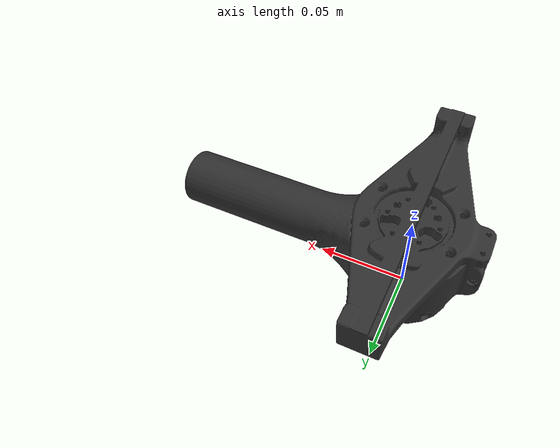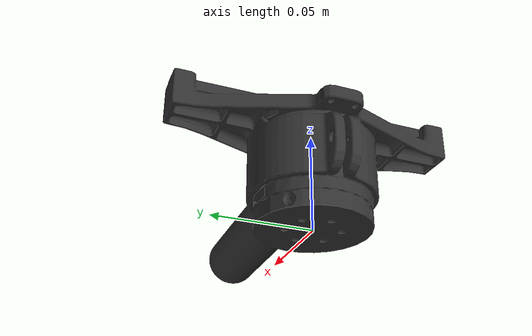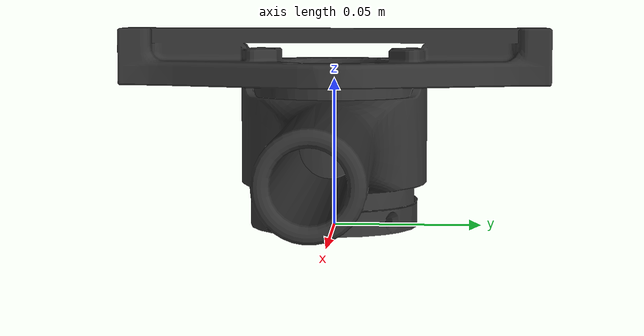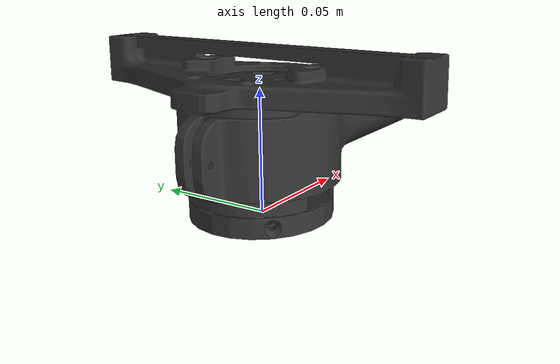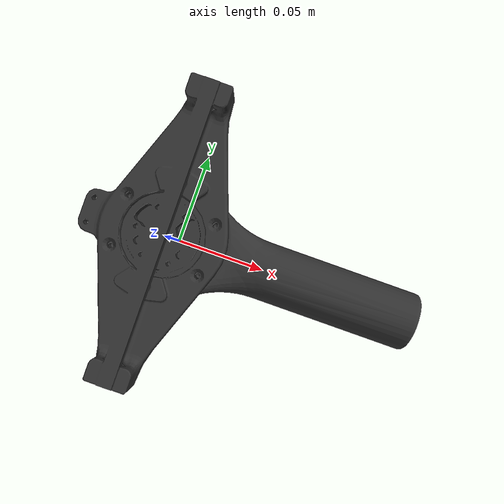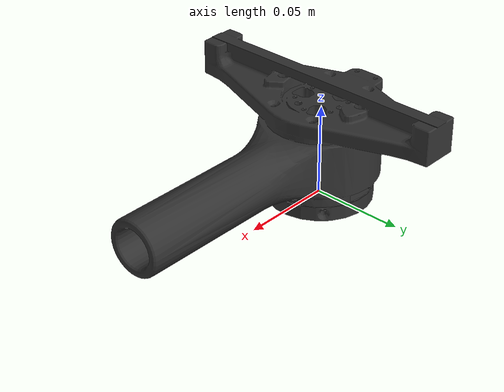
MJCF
<mujoco model="link6_master">
  <default>
    <default class="visual">
      <geom group="2" type="mesh" contype="0" conaffinity="0"/>
    </default>
    <default class="collision">
      <geom group="3" type="mesh"/>
    </default>
  </default>
  <asset>
    <material name="grey_metal.001" specular="0.5" shininess="0.09604875199999999" rgba="0.191349 0.191349 0.191349 1.000000"/>
    <mesh file="link6_master.obj"/>
    <mesh file="link6_master_collision_0.obj"/>
    <mesh file="link6_master_collision_1.obj"/>
    <mesh file="link6_master_collision_2.obj"/>
  </asset>
  <worldbody>
    <body name="link6_master">
      <geom material="grey_metal.001" mesh="link6_master" class="visual"/>
      <geom mesh="link6_master_collision_0" rgba="0.8265183860389108 0.46796048381429456 0.4760043514843293 1" class="collision"/>
      <geom mesh="link6_master_collision_1" rgba="0.2516411853008568 0.9134559847950654 0.14117825796051642 1" class="collision"/>
      <geom mesh="link6_master_collision_2" rgba="0.49592506027684224 0.6665077840804111 0.49125667966772624 1" class="collision"/>
    </body>
  </worldbody>
</mujoco>
